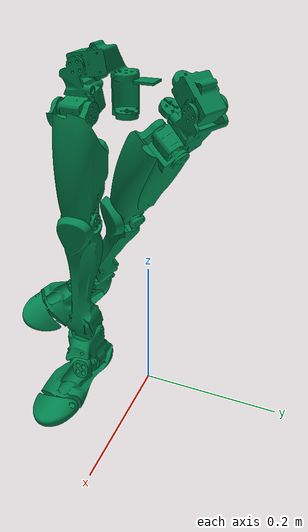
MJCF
<?xml version="1.0" ?>
<mujoco model="lilgreen">
  <compiler angle="radian" meshdir="meshes" autolimits="true"/>
    <default>
      <default class="berkeley-humanoid-lite">
        <joint frictionloss="0.1" armature="0.005"/>
        <position kp="50" dampratio="1"/>
        <default class="visual">
          <geom type="mesh" contype="0" conaffinity="0" group="2"/>
        </default>
        <default class="collision">
          <geom group="3"/>
        </default>
      </default>
    </default>
  <worldbody>
    <body name="base" pos="0 0 0" quat="1 0 0 0" childclass="berkeley-humanoid-lite">
      <freejoint name="base_freejoint"/>
      <geom type="mesh" rgba="0 0.5 0.3 1" mesh="base"/>
      <!-- Link imu_2 -->
      <body name="imu_2" pos="0 0 0" quat="1 0 0 0">
        <!-- Joint from base to imu_2 -->
        <!-- Joint is "fixed", skipping it -->
        <inertial pos="2.95445e-18 9.47955e-19 0.0025" mass="0.00197704" fullinertia="1.11441e-07 4.06118e-08 1.43815e-07 -1.67651e-38 0 7.34684e-40"/>
        <!-- Part imu_2_parts -->
        <geom type="mesh" rgba="0 0.5 0.3 1" mesh="imu_2"/>
        <!-- Frame imu -->
        <site group="3" name="imu" pos="0 -6.33816e-19 0.005" quat="1 0 0 0"/>
      </body>

    <body name="leg_left_hip_roll" pos="-0.01843 0.036325 0.448589" quat="0.918374 -0.297966 0.112375 -0.234896">
      <inertial pos="-0.000856505 0.0194755 0.00130804"  mass="0.380702" diaginertia="0.000389055 0.000361071 0.000127874"/>
      <joint name="leg_left_hip_roll_joint" pos="0 0 0" axis="0 0 -1" type="hinge" range="-0.698132 0.523599"/>
      <geom pos="0.01843 -0.036325 -0.448589" type="mesh" rgba="0 0.5 0.3 1" mesh="leg_left_hip_roll"/>
      <body name="leg_left_hip_yaw" pos="-0.005888 0.048681 0.017448">
        <inertial pos="0.0206517 0.00127098 -0.0305795" quat="0.347121 0.605476 0.686022 0.205618" mass="0.332914" diaginertia="0.000182955 0.000141215 0.000100829"/>
        <joint name="leg_left_hip_yaw_joint" pos="0 0 0" axis="1 0 0" type="hinge" range="-0.087266 1.22173"/>
        <geom pos="0.024318 -0.085006 -0.466037" quat="1 0 0 0" type="mesh" rgba="0 0.5 0.3 1" mesh="leg_left_hip_yaw"/>
        <body name="leg_left_hip_pitch" pos="0.050677 -0.017761 -0.049102">
          <inertial pos="0.00531927 0.0136919 -0.0677785" quat="0.814709 0.0378621 0.0254736 0.578072" mass="2.55863" diaginertia="0.00371987 0.00354015 0.00137198"/>
          <joint name="leg_left_hip_pitch_joint" pos="0 0 0" axis="-0.09088 0.995829 0.008048" type="hinge" range="-1.48353 0.785398"/>
          <geom pos="-0.026359 -0.067245 -0.416935" quat="1 0 0 0" type="mesh" rgba="0 0.5 0.3 1" mesh="leg_left_hip_pitch"/>
          <body name="leg_left_knee_pitch" pos="0.001463 0.000146 -0.143265">
            <inertial pos="-0.000928318 0.0225047 -0.0971511" quat="0.684632 0.0299815 0.00127634 0.728271" mass="0.282318" diaginertia="0.0011547 0.00114013 8.2167e-05"/>
            <joint name="leg_left_knee_pitch_joint" pos="0 0 0" axis="-0.003746 0.999951 0.009124" type="hinge" range="0 1.39626"/>
            <geom pos="-0.027822 -0.067391 -0.27367" quat="1 0 0 0" type="mesh" rgba="0 0.5 0.3 1" mesh="leg_left_knee_pitch"/>
            <body name="leg_left_ankle_pitch" pos="-0.005436 0.005423 -0.189904">
              <inertial pos="0.00728825 0.0211951 -0.0362447" quat="0.990167 -0.132943 -0.0342002 -0.0269464" mass="0.115614" diaginertia="5.00752e-05 4.58142e-05 3.41106e-05"/>
              <joint name="leg_left_ankle_pitch_joint" pos="0 0 0" axis="-0.087156 0.995794 0.028261" type="hinge" range="-0.383972 1.13446"/>
              <geom pos="-0.022386 -0.072814 -0.083766" type="mesh" rgba="0 0.5 0.3 1" mesh="leg_left_ankle_pitch"/>
              <body name="leg_left_ankle_roll" pos="0.028509 0.013883 -0.04871">
                <inertial pos="0.00457897 0.00987112 -0.0195328" quat="0.0261173 0.707185 0.0903826 0.700741" mass="0.152374" diaginertia="0.000263838 0.000234653 5.55084e-05"/>
                <joint name="leg_left_ankle_roll_joint" pos="0 0 0" axis="-0.996271 -0.085443 -0.012019" type="hinge" range="-0.226893 0.610865"/>
                <geom pos="-0.050895 -0.086697 -0.035056" quat="1 0 0 0" type="mesh" rgba="0 0.5 0.3 1" mesh="leg_left_ankle_roll"/>
                <body name="leg_left_toe_pitch" pos="0.066278 0.012934 -0.014865">
                  <inertial pos="0.014985 -0.00254097 -0.00858133" quat="0.5 0.5 -0.5 0.5" mass="0.0303479" diaginertia="1.1e-05 8e-06 4e-06"/>
                  <joint name="leg_left_toe_pitch_joint" pos="0 0 0" axis="0.085669 -0.996129 -0.019672" type="hinge" range="-0.087266 0.610865"/>

                  <geom pos="-0.117173 -0.099631 -0.020191" quat="1 0 0 0" type="mesh" rgba="0 0.5 0.3 1" mesh="leg_left_toe_pitch"/>
                </body>
              </body>
            </body>
          </body>
        </body>
      </body>
    </body>

    <body name="leg_right_hip_roll" pos="-0.01843 -0.036325 0.448589">
      <inertial pos="-0.000856502 -0.0194755 0.00130804" quat="0.918374 0.297966 0.112375 0.234896" mass="0.380702" diaginertia="0.000389055 0.000361071 0.000127874"/>
      <joint name="leg_right_hip_roll_joint" pos="0 0 0" axis="0 0 1" type="hinge" range="-0.698132 0.523599"/>
      <geom pos="0.01843 0.036325 -0.448589" type="mesh" rgba="0 0.5 0.3 1" mesh="leg_right_hip_roll"/>
      <body name="leg_right_hip_yaw" pos="-0.005888 -0.048681 0.017448">
        <inertial pos="0.0206517 -0.00127098 -0.0305795" quat="0.205618 0.686022 0.605476 0.347121" mass="0.332914" diaginertia="0.000182955 0.000141215 0.000100829"/>
        <joint name="leg_right_hip_yaw_joint" pos="0 0 0" axis="-1 0 0" type="hinge" range="-0.087266 1.22173"/>
        <geom pos="0.024318 0.085006 -0.466037" quat="1 0 0 0" type="mesh" rgba="0 0.5 0.3 1" mesh="leg_right_hip_yaw"/>
        <body name="leg_right_hip_pitch" pos="0.050677 0.017761 -0.049102">
          <inertial pos="0.00531927 -0.0136919 -0.0677785" quat="0.578072 0.0254736 0.0378621 0.814709" mass="2.55863" diaginertia="0.00371987 0.00354015 0.00137198"/>
          <joint name="leg_right_hip_pitch_joint" pos="0 0 0" axis="0.09088 0.995829 -0.008048" type="hinge" range="-1.48353 0.785398"/>
          <geom pos="-0.026359 0.067245 -0.416935" quat="1 0 0 0" type="mesh" rgba="0 0.5 0.3 1" mesh="leg_right_hip_pitch"/>
          <body name="leg_right_knee_pitch" pos="0.001463 -0.000146 -0.143265">
            <inertial pos="-0.000928318 -0.0225047 -0.0971511" quat="0.728271 0.00127634 0.0299815 0.684632" mass="0.282318" diaginertia="0.0011547 0.00114013 8.2167e-05"/>
            <joint name="leg_right_knee_pitch_joint" pos="0 0 0" axis="0.003746 0.999951 -0.009124" type="hinge" range="0 1.48353"/>
            <geom pos="-0.027822 0.067391 -0.27367" type="mesh" rgba="0 0.5 0.3 1" mesh="leg_right_knee_pitch"/>
            <body name="leg_right_ankle_pitch" pos="-0.005436 -0.005423 -0.189904">
              <inertial pos="0.00728825 -0.0211951 -0.0362447" quat="0.990167 0.132943 -0.0342002 0.0269464" mass="0.115614" diaginertia="5.00752e-05 4.58142e-05 3.41106e-05"/>
              <joint name="leg_right_ankle_pitch_joint" pos="0 0 0" axis="0.087156 0.995794 -0.028261" type="hinge" range="-0.383972 1.13446"/>
              <geom pos="-0.022386 0.072814 -0.083766" type="mesh" rgba="0 0.5 0.3 1" mesh="leg_right_ankle_pitch"/>
              <body name="leg_right_ankle_roll" pos="0.028509 -0.013883 -0.04871">
                <inertial pos="0.00258632 -0.00970014 -0.0195568" quat="-0.0261173 0.707185 -0.0903826 0.700741" mass="0.152373" diaginertia="0.000263838 0.000234653 5.55084e-05"/>
                <joint name="leg_right_ankle_roll_joint" pos="0 0 0" axis="0.996271 -0.085443 0.012019" type="hinge" range="-0.226893 0.785398"/>
                <geom pos="-0.050895 0.086697 -0.035056" quat="1 0 0 0" type="mesh" rgba="0 0.5 0.3 1" mesh="leg_right_ankle_roll"/>
                <body name="leg_right_toe_pitch" pos="0.064286 -0.012763 -0.014889">
                  <inertial pos="0.0149847 0.00254105 -0.00858128" quat="0.5 0.5 -0.5 0.5" mass="0.0303479" diaginertia="1.1e-05 8e-06 4e-06"/>
                  <joint name="leg_right_toe_pitch_joint" pos="0 0 0" axis="-0.085669 -0.996129 0.019672" type="hinge" range="-0.087266 0.610865"/>

                  <geom pos="-0.115181 0.09946 -0.020167" quat="1 0 0 0" type="mesh" rgba="0 0.5 0.3 1" mesh="leg_right_toe_pitch"/>
                </body>
              </body>
            </body>
          </body>
        </body>
      </body>
    </body>

    </body>

  </worldbody>

  <asset>
    <mesh name="base" content_type="model/stl" file="base.stl" scale="0.001 0.001 0.001"/>
    <mesh name="leg_left_hip_roll" content_type="model/stl" file="leg_left_hip_roll.stl" scale="0.001 0.001 0.001"/>
    <mesh name="leg_left_hip_yaw" content_type="model/stl" file="leg_left_hip_yaw.stl" scale="0.001 0.001 0.001"/>
    <mesh name="leg_left_knee_pitch" content_type="model/stl" file="leg_left_knee_pitch.stl" scale="0.001 0.001 0.001"/>
    <mesh name="leg_left_ankle_pitch" content_type="model/stl" file="leg_left_ankle_pitch.stl" scale="0.001 0.001 0.001"/>
    <mesh name="leg_left_ankle_roll" content_type="model/stl" file="leg_left_ankle_roll.stl" scale="0.001 0.001 0.001"/>
    <mesh name="leg_right_hip_roll" content_type="model/stl" file="leg_right_hip_roll.stl" scale="0.001 0.001 0.001"/>
    <mesh name="leg_right_hip_yaw" content_type="model/stl" file="leg_right_hip_yaw.stl" scale="0.001 0.001 0.001"/>
    <mesh name="leg_right_hip_pitch" content_type="model/stl" file="leg_right_hip_pitch.stl" scale="0.001 0.001 0.001"/>
    <mesh name="leg_right_knee_pitch" content_type="model/stl" file="leg_right_knee_pitch.stl" scale="0.001 0.001 0.001"/>
    <mesh name="leg_right_ankle_pitch" content_type="model/stl" file="leg_right_ankle_pitch.stl" scale="0.001 0.001 0.001"/>
    <mesh name="leg_left_hip_pitch" content_type="model/stl" file="leg_left_hip_pitch.stl" scale="0.001 0.001 0.001"/>
    <mesh name="leg_right_ankle_roll" content_type="model/stl" file="leg_right_ankle_roll.stl" scale="0.001 0.001 0.001"/>
    <mesh name="leg_left_toe_pitch" content_type="model/stl" file="leg_left_toe_pitch.stl" scale="0.001 0.001 0.001"/>
    <mesh name="leg_right_toe_pitch" content_type="model/stl" file="leg_right_toe_pitch.stl" scale="0.001 0.001 0.001"/>
    <mesh name="imu_2" content_type="model/stl" file="imu_2.stl" scale="0.001 0.001 0.001"/>
  </asset>

  <actuator>
    <motor class="berkeley-humanoid-lite" name="leg_left_hip_roll_joint" joint="leg_left_hip_roll_joint" forcerange="-20 20"/>
    <motor class="berkeley-humanoid-lite" name="leg_left_hip_yaw_joint" joint="leg_left_hip_yaw_joint" forcerange="-20 20"/>
    <motor class="berkeley-humanoid-lite" name="leg_left_hip_pitch_joint" joint="leg_left_hip_pitch_joint" forcerange="-20 20"/>
    <motor class="berkeley-humanoid-lite" name="leg_left_knee_pitch_joint" joint="leg_left_knee_pitch_joint" forcerange="-20 20"/>
    <motor class="berkeley-humanoid-lite" name="leg_left_ankle_pitch_joint" joint="leg_left_ankle_pitch_joint" forcerange="-20 20"/>
    <motor class="berkeley-humanoid-lite" name="leg_left_ankle_roll_joint" joint="leg_left_ankle_roll_joint" forcerange="-20 20"/>
    <motor class="berkeley-humanoid-lite" name="leg_right_hip_roll_joint" joint="leg_right_hip_roll_joint" forcerange="-20 20"/>
    <motor class="berkeley-humanoid-lite" name="leg_right_hip_yaw_joint" joint="leg_right_hip_yaw_joint" forcerange="-20 20"/>
    <motor class="berkeley-humanoid-lite" name="leg_right_hip_pitch_joint" joint="leg_right_hip_pitch_joint" forcerange="-20 20"/>
    <motor class="berkeley-humanoid-lite" name="leg_right_knee_pitch_joint" joint="leg_right_knee_pitch_joint" forcerange="-20 20"/>
    <motor class="berkeley-humanoid-lite" name="leg_right_ankle_pitch_joint" joint="leg_right_ankle_pitch_joint" forcerange="-20 20"/>
    <motor class="berkeley-humanoid-lite" name="leg_right_ankle_roll_joint" joint="leg_right_ankle_roll_joint" forcerange="-20 20"/>
  </actuator>

  <sensor>
    <jointpos name="leg_left_hip_roll_pos"        joint="leg_left_hip_roll_joint"/>
    <jointpos name="leg_left_hip_yaw_pos"         joint="leg_left_hip_yaw_joint"/>
    <jointpos name="leg_left_hip_pitch_pos"       joint="leg_left_hip_pitch_joint"/>
    <jointpos name="leg_left_knee_pitch_pos"      joint="leg_left_knee_pitch_joint"/>
    <jointpos name="leg_left_ankle_pitch_pos"     joint="leg_left_ankle_pitch_joint"/>
    <jointpos name="leg_left_ankle_roll_pos"      joint="leg_left_ankle_roll_joint"/>
    <jointpos name="leg_right_hip_roll_pos"       joint="leg_right_hip_roll_joint"/>
    <jointpos name="leg_right_hip_yaw_pos"        joint="leg_right_hip_yaw_joint"/>
    <jointpos name="leg_right_hip_pitch_pos"      joint="leg_right_hip_pitch_joint"/>
    <jointpos name="leg_right_knee_pitch_pos"     joint="leg_right_knee_pitch_joint"/>
    <jointpos name="leg_right_ankle_pitch_pos"    joint="leg_right_ankle_pitch_joint"/>
    <jointpos name="leg_right_ankle_roll_pos"     joint="leg_right_ankle_roll_joint"/>

    <jointvel name="leg_left_hip_roll_vel"        joint="leg_left_hip_roll_joint"/>
    <jointvel name="leg_left_hip_yaw_vel"         joint="leg_left_hip_yaw_joint"/>
    <jointvel name="leg_left_hip_pitch_vel"       joint="leg_left_hip_pitch_joint"/>
    <jointvel name="leg_left_knee_pitch_vel"      joint="leg_left_knee_pitch_joint"/>
    <jointvel name="leg_left_ankle_pitch_vel"     joint="leg_left_ankle_pitch_joint"/>
    <jointvel name="leg_left_ankle_roll_vel"      joint="leg_left_ankle_roll_joint"/>
    <jointvel name="leg_right_hip_roll_vel"       joint="leg_right_hip_roll_joint"/>
    <jointvel name="leg_right_hip_yaw_vel"        joint="leg_right_hip_yaw_joint"/>
    <jointvel name="leg_right_hip_pitch_vel"      joint="leg_right_hip_pitch_joint"/>
    <jointvel name="leg_right_knee_pitch_vel"     joint="leg_right_knee_pitch_joint"/>
    <jointvel name="leg_right_ankle_pitch_vel"    joint="leg_right_ankle_pitch_joint"/>
    <jointvel name="leg_right_ankle_roll_vel"     joint="leg_right_ankle_roll_joint"/>

    <jointactuatorfrc name="leg_left_hip_roll_torque"         joint="leg_left_hip_roll_joint"/>
    <jointactuatorfrc name="leg_left_hip_yaw_torque"          joint="leg_left_hip_yaw_joint"/>
    <jointactuatorfrc name="leg_left_hip_pitch_torque"        joint="leg_left_hip_pitch_joint"/>
    <jointactuatorfrc name="leg_left_knee_pitch_torque"       joint="leg_left_knee_pitch_joint"/>
    <jointactuatorfrc name="leg_left_ankle_pitch_torque"      joint="leg_left_ankle_pitch_joint"/>
    <jointactuatorfrc name="leg_left_ankle_roll_torque"       joint="leg_left_ankle_roll_joint"/>
    <jointactuatorfrc name="leg_right_hip_roll_torque"        joint="leg_right_hip_roll_joint"/>
    <jointactuatorfrc name="leg_right_hip_yaw_torque"         joint="leg_right_hip_yaw_joint"/>
    <jointactuatorfrc name="leg_right_hip_pitch_torque"       joint="leg_right_hip_pitch_joint"/>
    <jointactuatorfrc name="leg_right_knee_pitch_torque"      joint="leg_right_knee_pitch_joint"/>
    <jointactuatorfrc name="leg_right_ankle_pitch_torque"     joint="leg_right_ankle_pitch_joint"/>
    <jointactuatorfrc name="leg_right_ankle_roll_torque"      joint="leg_right_ankle_roll_joint"/>

    <framequat name="imu_quat" objtype="site" objname="imu" />
    <gyro name="imu_gyro" site="imu" />
    <accelerometer name="imu_acc" site="imu" />
    <framepos name="frame_pos" objtype="site" objname="imu" />
    <framelinvel name="frame_vel" objtype="site" objname="imu" />
  </sensor>
<equality/>
</mujoco>
